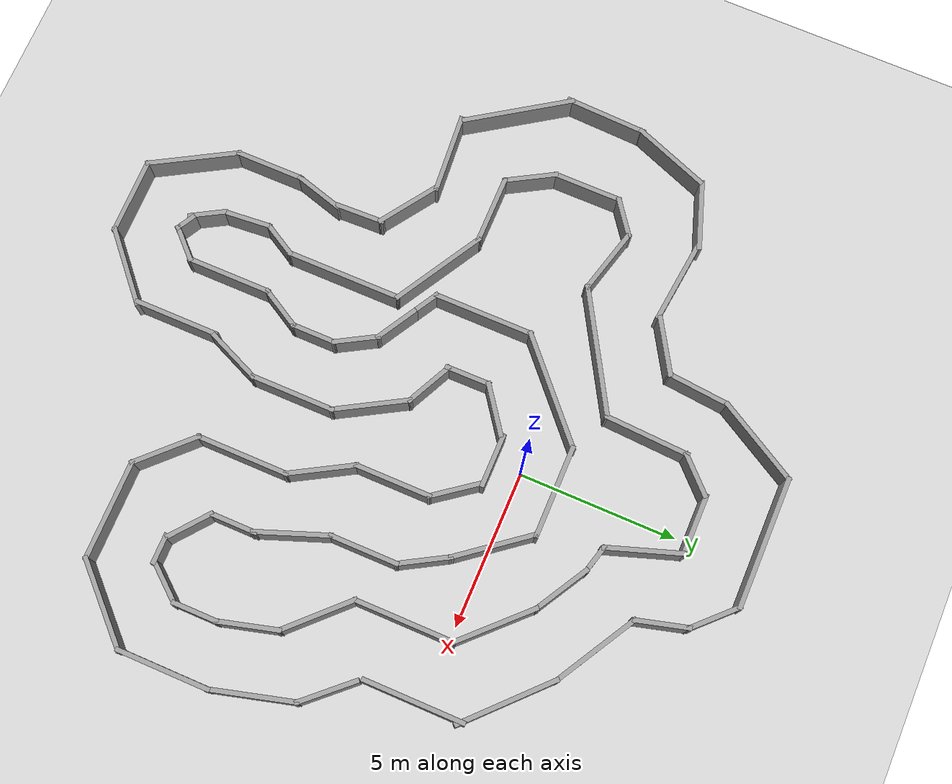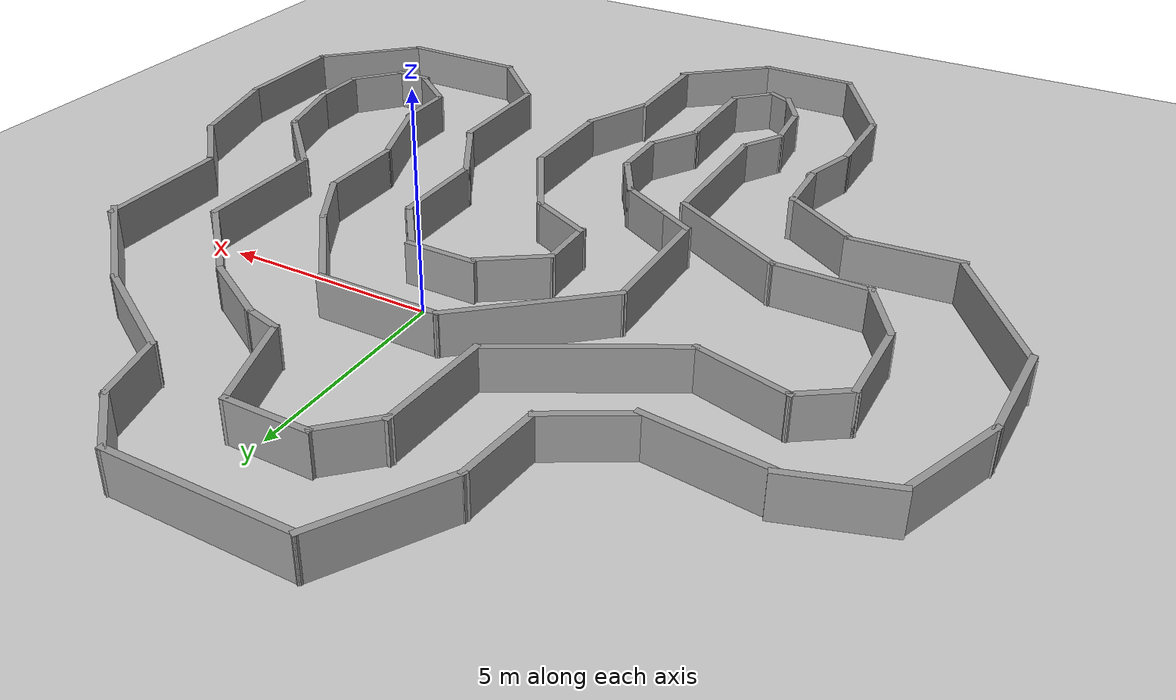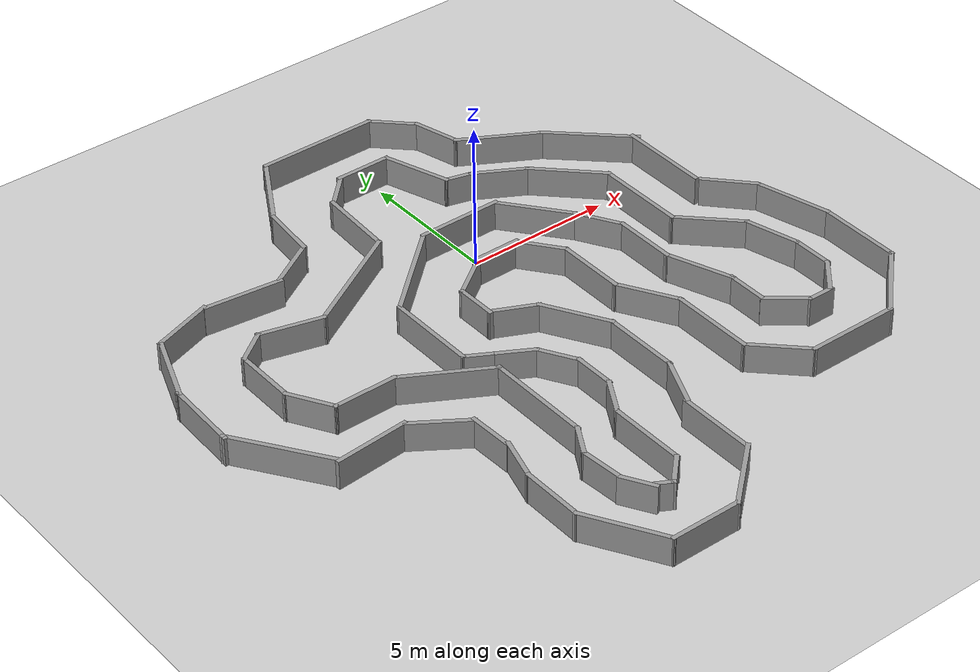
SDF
<sdf version='1.6'>
  <world name='default'>
    <include>
      <uri>model://ground_plane</uri>
    </include>
    <include>
      <uri>model://sun</uri>
    </include>

    <include>
      <uri>model://RaceTrackv2</uri>
      <name>RaceTrackv2</name>
      <pose>-1.0 -3.5 0 0 0 0</pose>
    </include>

  </world>
</sdf>

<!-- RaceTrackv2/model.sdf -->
<sdf version='1.7'>
  <model name='RaceTrackv2'>
    <pose>1.71889 -2.69985 0 0 -0 0</pose>
    <link name='Wall_10'>
      <collision name='Wall_10_Collision'>
        <geometry>
          <box>
            <size>2.5 0.15 1</size>
          </box>
        </geometry>
        <pose>0 0 0.5 0 -0 0</pose>
      </collision>
      <visual name='Wall_10_Visual'>
        <pose>0 0 0.5 0 -0 0</pose>
        <geometry>
          <box>
            <size>2.5 0.15 1</size>
          </box>
        </geometry>
        <material>
          <script>
            <uri>file://media/materials/scripts/gazebo.material</uri>
            <name>Gazebo/Grey</name>
          </script>
          <ambient>1 1 1 1</ambient>
        </material>
        <meta>
          <layer>0</layer>
        </meta>
      </visual>
      <pose>-2.18521 -10.8789 0 0 -0 0</pose>
    </link>
    <link name='Wall_11'>
      <collision name='Wall_11_Collision'>
        <geometry>
          <box>
            <size>2.66002 0.15 1</size>
          </box>
        </geometry>
        <pose>0 0 0.5 0 -0 0</pose>
      </collision>
      <visual name='Wall_11_Visual'>
        <pose>0 0 0.5 0 -0 0</pose>
        <geometry>
          <box>
            <size>2.66002 0.15 1</size>
          </box>
        </geometry>
        <material>
          <script>
            <uri>file://media/materials/scripts/gazebo.material</uri>
            <name>Gazebo/Grey</name>
          </script>
          <ambient>1 1 1 1</ambient>
        </material>
        <meta>
          <layer>0</layer>
        </meta>
      </visual>
      <pose>-0.069604 -10.0481 0 0 -0 0.723519</pose>
    </link>
    <link name='Wall_12'>
      <collision name='Wall_12_Collision'>
        <geometry>
          <box>
            <size>2.75 0.15 1</size>
          </box>
        </geometry>
        <pose>0 0 0.5 0 -0 0</pose>
      </collision>
      <visual name='Wall_12_Visual'>
        <pose>0 0 0.5 0 -0 0</pose>
        <geometry>
          <box>
            <size>2.75 0.15 1</size>
          </box>
        </geometry>
        <material>
          <script>
            <uri>file://media/materials/scripts/gazebo.material</uri>
            <name>Gazebo/Grey</name>
          </script>
          <ambient>1 1 1 1</ambient>
        </material>
        <meta>
          <layer>0</layer>
        </meta>
      </visual>
      <pose>0.816125 -7.91721 0 0 -0 1.5708</pose>
    </link>
    <link name='Wall_13'>
      <collision name='Wall_13_Collision'>
        <geometry>
          <box>
            <size>1.9006 0.15 1</size>
          </box>
        </geometry>
        <pose>0 0 0.5 0 -0 0</pose>
      </collision>
      <visual name='Wall_13_Visual'>
        <pose>0 0 0.5 0 -0 0</pose>
        <geometry>
          <box>
            <size>1.9006 0.15 1</size>
          </box>
        </geometry>
        <material>
          <script>
            <uri>file://media/materials/scripts/gazebo.material</uri>
            <name>Gazebo/Grey</name>
          </script>
          <ambient>1 1 1 1</ambient>
        </material>
        <meta>
          <layer>0</layer>
        </meta>
      </visual>
      <pose>1.22375 -5.81614 0 0 -0 1.15601</pose>
    </link>
    <link name='Wall_14'>
      <collision name='Wall_14_Collision'>
        <geometry>
          <box>
            <size>2.75 0.15 1</size>
          </box>
        </geometry>
        <pose>0 0 0.5 0 -0 0</pose>
      </collision>
      <visual name='Wall_14_Visual'>
        <pose>0 0 0.5 0 -0 0</pose>
        <geometry>
          <box>
            <size>2.75 0.15 1</size>
          </box>
        </geometry>
        <material>
          <script>
            <uri>file://media/materials/scripts/gazebo.material</uri>
            <name>Gazebo/Grey</name>
          </script>
          <ambient>1 1 1 1</ambient>
        </material>
        <meta>
          <layer>0</layer>
        </meta>
      </visual>
      <pose>1.57649 -3.71506 0 0 -0 1.5708</pose>
    </link>
    <link name='Wall_15'>
      <collision name='Wall_15_Collision'>
        <geometry>
          <box>
            <size>2.5 0.15 1</size>
          </box>
        </geometry>
        <pose>0 0 0.5 0 -0 0</pose>
      </collision>
      <visual name='Wall_15_Visual'>
        <pose>0 0 0.5 0 -0 0</pose>
        <geometry>
          <box>
            <size>2.5 0.15 1</size>
          </box>
        </geometry>
        <material>
          <script>
            <uri>file://media/materials/scripts/gazebo.material</uri>
            <name>Gazebo/Grey</name>
          </script>
          <ambient>1 1 1 1</ambient>
        </material>
        <meta>
          <layer>0</layer>
        </meta>
      </visual>
      <pose>0.98899 -1.39748 0 0 -0 2.0944</pose>
    </link>
    <link name='Wall_16'>
      <collision name='Wall_16_Collision'>
        <geometry>
          <box>
            <size>1.69153 0.15 1</size>
          </box>
        </geometry>
        <pose>0 0 0.5 0 -0 0</pose>
      </collision>
      <visual name='Wall_16_Visual'>
        <pose>0 0 0.5 0 -0 0</pose>
        <geometry>
          <box>
            <size>1.69153 0.15 1</size>
          </box>
        </geometry>
        <material>
          <script>
            <uri>file://media/materials/scripts/gazebo.material</uri>
            <name>Gazebo/Grey</name>
          </script>
          <ambient>1 1 1 1</ambient>
        </material>
        <meta>
          <layer>0</layer>
        </meta>
      </visual>
      <pose>-0.291331 -0.042146 0 0 -0 2.68799</pose>
    </link>
    <link name='Wall_17'>
      <collision name='Wall_17_Collision'>
        <geometry>
          <box>
            <size>1.4935 0.15 1</size>
          </box>
        </geometry>
        <pose>0 0 0.5 0 -0 0</pose>
      </collision>
      <visual name='Wall_17_Visual'>
        <pose>0 0 0.5 0 -0 0</pose>
        <geometry>
          <box>
            <size>1.4935 0.15 1</size>
          </box>
        </geometry>
        <material>
          <script>
            <uri>file://media/materials/scripts/gazebo.material</uri>
            <name>Gazebo/Grey</name>
          </script>
          <ambient>1 1 1 1</ambient>
        </material>
        <meta>
          <layer>0</layer>
        </meta>
      </visual>
      <pose>-0.988225 0.925853 0 0 -0 1.57686</pose>
    </link>
    <link name='Wall_18'>
      <collision name='Wall_18_Collision'>
        <geometry>
          <box>
            <size>1.75776 0.15 1</size>
          </box>
        </geometry>
        <pose>0 0 0.5 0 -0 0</pose>
      </collision>
      <visual name='Wall_18_Visual'>
        <pose>0 0 0.5 0 -0 0</pose>
        <geometry>
          <box>
            <size>1.75776 0.15 1</size>
          </box>
        </geometry>
        <material>
          <script>
            <uri>file://media/materials/scripts/gazebo.material</uri>
            <name>Gazebo/Grey</name>
          </script>
          <ambient>1 1 1 1</ambient>
        </material>
        <meta>
          <layer>0</layer>
        </meta>
      </visual>
      <pose>-0.338225 2.06493 0 0 -0 0.620398</pose>
    </link>
    <link name='Wall_19'>
      <collision name='Wall_19_Collision'>
        <geometry>
          <box>
            <size>1.75 0.15 1</size>
          </box>
        </geometry>
        <pose>0 0 0.5 0 -0 0</pose>
      </collision>
      <visual name='Wall_19_Visual'>
        <pose>0 0 0.5 0 -0 0</pose>
        <geometry>
          <box>
            <size>1.75 0.15 1</size>
          </box>
        </geometry>
        <material>
          <script>
            <uri>file://media/materials/scripts/gazebo.material</uri>
            <name>Gazebo/Grey</name>
          </script>
          <ambient>1 1 1 1</ambient>
        </material>
        <meta>
          <layer>0</layer>
        </meta>
      </visual>
      <pose>1.11585 2.61527 0 0 -0 0</pose>
    </link>
    <link name='Wall_2'>
      <collision name='Wall_2_Collision'>
        <geometry>
          <box>
            <size>2.66777 0.15 1</size>
          </box>
        </geometry>
        <pose>0 0 0.5 0 -0 0</pose>
      </collision>
      <visual name='Wall_2_Visual'>
        <pose>0 0 0.5 0 -0 0</pose>
        <geometry>
          <box>
            <size>2.66777 0.15 1</size>
          </box>
        </geometry>
        <material>
          <script>
            <uri>file://media/materials/scripts/gazebo.material</uri>
            <name>Gazebo/Grey</name>
          </script>
          <ambient>1 1 1 1</ambient>
        </material>
        <meta>
          <layer>0</layer>
        </meta>
      </visual>
      <pose>-10.4453 1.6494 0 0 -0 -1.60871</pose>
    </link>
    <link name='Wall_20'>
      <collision name='Wall_20_Collision'>
        <geometry>
          <box>
            <size>1.68795 0.15 1</size>
          </box>
        </geometry>
        <pose>0 0 0.5 0 -0 0</pose>
      </collision>
      <visual name='Wall_20_Visual'>
        <pose>0 0 0.5 0 -0 0</pose>
        <geometry>
          <box>
            <size>1.68795 0.15 1</size>
          </box>
        </geometry>
        <material>
          <script>
            <uri>file://media/materials/scripts/gazebo.material</uri>
            <name>Gazebo/Grey</name>
          </script>
          <ambient>1 1 1 1</ambient>
        </material>
        <meta>
          <layer>0</layer>
        </meta>
      </visual>
      <pose>2.37835 1.91793 0 0 -0 -0.925481</pose>
    </link>
    <link name='Wall_21'>
      <collision name='Wall_21_Collision'>
        <geometry>
          <box>
            <size>2.5 0.15 1</size>
          </box>
        </geometry>
        <pose>0 0 0.5 0 -0 0</pose>
      </collision>
      <visual name='Wall_21_Visual'>
        <pose>0 0 0.5 0 -0 0</pose>
        <geometry>
          <box>
            <size>2.5 0.15 1</size>
          </box>
        </geometry>
        <material>
          <script>
            <uri>file://media/materials/scripts/gazebo.material</uri>
            <name>Gazebo/Grey</name>
          </script>
          <ambient>1 1 1 1</ambient>
        </material>
        <meta>
          <layer>0</layer>
        </meta>
      </visual>
      <pose>2.84085 0.128592 0 0 -0 -1.5708</pose>
    </link>
    <link name='Wall_22'>
      <collision name='Wall_22_Collision'>
        <geometry>
          <box>
            <size>2.25 0.15 1</size>
          </box>
        </geometry>
        <pose>0 0 0.5 0 -0 0</pose>
      </collision>
      <visual name='Wall_22_Visual'>
        <pose>0 0 0.5 0 -0 0</pose>
        <geometry>
          <box>
            <size>2.25 0.15 1</size>
          </box>
        </geometry>
        <material>
          <script>
            <uri>file://media/materials/scripts/gazebo.material</uri>
            <name>Gazebo/Grey</name>
          </script>
          <ambient>1 1 1 1</ambient>
        </material>
        <meta>
          <layer>0</layer>
        </meta>
      </visual>
      <pose>3.36585 -1.95574 0 0 -0 -1.0472</pose>
    </link>
    <link name='Wall_23'>
      <collision name='Wall_23_Collision'>
        <geometry>
          <box>
            <size>3 0.15 1</size>
          </box>
        </geometry>
        <pose>0 0 0.5 0 -0 0</pose>
      </collision>
      <visual name='Wall_23_Visual'>
        <pose>0 0 0.5 0 -0 0</pose>
        <geometry>
          <box>
            <size>3 0.15 1</size>
          </box>
        </geometry>
        <material>
          <script>
            <uri>file://media/materials/scripts/gazebo.material</uri>
            <name>Gazebo/Grey</name>
          </script>
          <ambient>1 1 1 1</ambient>
        </material>
        <meta>
          <layer>0</layer>
        </meta>
      </visual>
      <pose>3.89085 -4.29006 0 0 -0 -1.5708</pose>
    </link>
    <link name='Wall_24'>
      <collision name='Wall_24_Collision'>
        <geometry>
          <box>
            <size>2.25 0.15 1</size>
          </box>
        </geometry>
        <pose>0 0 0.5 0 -0 0</pose>
      </collision>
      <visual name='Wall_24_Visual'>
        <pose>0 0 0.5 0 -0 0</pose>
        <geometry>
          <box>
            <size>2.25 0.15 1</size>
          </box>
        </geometry>
        <material>
          <script>
            <uri>file://media/materials/scripts/gazebo.material</uri>
            <name>Gazebo/Grey</name>
          </script>
          <ambient>1 1 1 1</ambient>
        </material>
        <meta>
          <layer>0</layer>
        </meta>
      </visual>
      <pose>4.63331 -6.45752 0 0 -0 -0.785398</pose>
    </link>
    <link name='Wall_25'>
      <collision name='Wall_25_Collision'>
        <geometry>
          <box>
            <size>3.25 0.15 1</size>
          </box>
        </geometry>
        <pose>0 0 0.5 0 -0 0</pose>
      </collision>
      <visual name='Wall_25_Visual'>
        <pose>0 0 0.5 0 -0 0</pose>
        <geometry>
          <box>
            <size>3.25 0.15 1</size>
          </box>
        </geometry>
        <material>
          <script>
            <uri>file://media/materials/scripts/gazebo.material</uri>
            <name>Gazebo/Grey</name>
          </script>
          <ambient>1 1 1 1</ambient>
        </material>
        <meta>
          <layer>0</layer>
        </meta>
      </visual>
      <pose>6.92577 -7.19999 0 0 -0 0</pose>
    </link>
    <link name='Wall_26'>
      <collision name='Wall_26_Collision'>
        <geometry>
          <box>
            <size>3 0.15 1</size>
          </box>
        </geometry>
        <pose>0 0 0.5 0 -0 0</pose>
      </collision>
      <visual name='Wall_26_Visual'>
        <pose>0 0 0.5 0 -0 0</pose>
        <geometry>
          <box>
            <size>3 0.15 1</size>
          </box>
        </geometry>
        <material>
          <script>
            <uri>file://media/materials/scripts/gazebo.material</uri>
            <name>Gazebo/Grey</name>
          </script>
          <ambient>1 1 1 1</ambient>
        </material>
        <meta>
          <layer>0</layer>
        </meta>
      </visual>
      <pose>9.4834 -6.19236 0 0 -0 0.785398</pose>
    </link>
    <link name='Wall_27'>
      <collision name='Wall_27_Collision'>
        <geometry>
          <box>
            <size>3 0.15 1</size>
          </box>
        </geometry>
        <pose>0 0 0.5 0 -0 0</pose>
      </collision>
      <visual name='Wall_27_Visual'>
        <pose>0 0 0.5 0 -0 0</pose>
        <geometry>
          <box>
            <size>3 0.15 1</size>
          </box>
        </geometry>
        <material>
          <script>
            <uri>file://media/materials/scripts/gazebo.material</uri>
            <name>Gazebo/Grey</name>
          </script>
          <ambient>1 1 1 1</ambient>
        </material>
        <meta>
          <layer>0</layer>
        </meta>
      </visual>
      <pose>10.491 -3.75973 0 0 -0 1.5708</pose>
    </link>
    <link name='Wall_28'>
      <collision name='Wall_28_Collision'>
        <geometry>
          <box>
            <size>2.75 0.15 1</size>
          </box>
        </geometry>
        <pose>0 0 0.5 0 -0 0</pose>
      </collision>
      <visual name='Wall_28_Visual'>
        <pose>0 0 0.5 0 -0 0</pose>
        <geometry>
          <box>
            <size>2.75 0.15 1</size>
          </box>
        </geometry>
        <material>
          <script>
            <uri>file://media/materials/scripts/gazebo.material</uri>
            <name>Gazebo/Grey</name>
          </script>
          <ambient>1 1 1 1</ambient>
        </material>
        <meta>
          <layer>0</layer>
        </meta>
      </visual>
      <pose>10.1546 -1.07903 0 0 -0 1.8326</pose>
    </link>
    <link name='Wall_29'>
      <collision name='Wall_29_Collision'>
        <geometry>
          <box>
            <size>1.9584 0.15 1</size>
          </box>
        </geometry>
        <pose>0 0 0.5 0 -0 0</pose>
      </collision>
      <visual name='Wall_29_Visual'>
        <pose>0 0 0.5 0 -0 0</pose>
        <geometry>
          <box>
            <size>1.9584 0.15 1</size>
          </box>
        </geometry>
        <material>
          <script>
            <uri>file://media/materials/scripts/gazebo.material</uri>
            <name>Gazebo/Grey</name>
          </script>
          <ambient>1 1 1 1</ambient>
        </material>
        <meta>
          <layer>0</layer>
        </meta>
      </visual>
      <pose>9.20676 0.842891 0 0 -0 2.31326</pose>
    </link>
    <link name='Wall_3'>
      <collision name='Wall_3_Collision'>
        <geometry>
          <box>
            <size>3.61418 0.15 1</size>
          </box>
        </geometry>
        <pose>0 0 0.5 0 -0 0</pose>
      </collision>
      <visual name='Wall_3_Visual'>
        <pose>0 0 0.5 0 -0 0</pose>
        <geometry>
          <box>
            <size>3.61418 0.15 1</size>
          </box>
        </geometry>
        <material>
          <script>
            <uri>file://media/materials/scripts/gazebo.material</uri>
            <name>Gazebo/Grey</name>
          </script>
          <ambient>1 1 1 1</ambient>
        </material>
        <meta>
          <layer>0</layer>
        </meta>
      </visual>
      <pose>-9.52713 -0.950918 0 0 -0 -0.979258</pose>
    </link>
    <link name='Wall_30'>
      <collision name='Wall_30_Collision'>
        <geometry>
          <box>
            <size>3.25 0.15 1</size>
          </box>
        </geometry>
        <pose>0 0 0.5 0 -0 0</pose>
      </collision>
      <visual name='Wall_30_Visual'>
        <pose>0 0 0.5 0 -0 0</pose>
        <geometry>
          <box>
            <size>3.25 0.15 1</size>
          </box>
        </geometry>
        <material>
          <script>
            <uri>file://media/materials/scripts/gazebo.material</uri>
            <name>Gazebo/Grey</name>
          </script>
          <ambient>1 1 1 1</ambient>
        </material>
        <meta>
          <layer>0</layer>
        </meta>
      </visual>
      <pose>8.48567 3.22374 0 0 -0 1.5708</pose>
    </link>
    <link name='Wall_31'>
      <collision name='Wall_31_Collision'>
        <geometry>
          <box>
            <size>3.29423 0.15 1</size>
          </box>
        </geometry>
        <pose>0 0 0.5 0 -0 0</pose>
      </collision>
      <visual name='Wall_31_Visual'>
        <pose>0 0 0.5 0 -0 0</pose>
        <geometry>
          <box>
            <size>3.29423 0.15 1</size>
          </box>
        </geometry>
        <material>
          <script>
            <uri>file://media/materials/scripts/gazebo.material</uri>
            <name>Gazebo/Grey</name>
          </script>
          <ambient>1 1 1 1</ambient>
        </material>
        <meta>
          <layer>0</layer>
        </meta>
      </visual>
      <pose>7.45667 5.69298 0 0 -0 2.38088</pose>
    </link>
    <link name='Wall_32'>
      <collision name='Wall_32_Collision'>
        <geometry>
          <box>
            <size>3 0.15 1</size>
          </box>
        </geometry>
        <pose>0 0 0.5 0 -0 0</pose>
      </collision>
      <visual name='Wall_32_Visual'>
        <pose>0 0 0.5 0 -0 0</pose>
        <geometry>
          <box>
            <size>3 0.15 1</size>
          </box>
        </geometry>
        <material>
          <script>
            <uri>file://media/materials/scripts/gazebo.material</uri>
            <name>Gazebo/Grey</name>
          </script>
          <ambient>1 1 1 1</ambient>
        </material>
        <meta>
          <layer>0</layer>
        </meta>
      </visual>
      <pose>5.08383 7.48935 0 0 -0 2.61799</pose>
    </link>
    <link name='Wall_33'>
      <collision name='Wall_33_Collision'>
        <geometry>
          <box>
            <size>1.75 0.15 1</size>
          </box>
        </geometry>
        <pose>0 0 0.5 0 -0 0</pose>
      </collision>
      <visual name='Wall_33_Visual'>
        <pose>0 0 0.5 0 -0 0</pose>
        <geometry>
          <box>
            <size>1.75 0.15 1</size>
          </box>
        </geometry>
        <material>
          <script>
            <uri>file://media/materials/scripts/gazebo.material</uri>
            <name>Gazebo/Grey</name>
          </script>
          <ambient>1 1 1 1</ambient>
        </material>
        <meta>
          <layer>0</layer>
        </meta>
      </visual>
      <pose>3.64269 8.9746 0 0 -0 1.8326</pose>
    </link>
    <link name='Wall_34'>
      <collision name='Wall_34_Collision'>
        <geometry>
          <box>
            <size>1.75 0.15 1</size>
          </box>
        </geometry>
        <pose>0 0 0.5 0 -0 0</pose>
      </collision>
      <visual name='Wall_34_Visual'>
        <pose>0 0 0.5 0 -0 0</pose>
        <geometry>
          <box>
            <size>1.75 0.15 1</size>
          </box>
        </geometry>
        <material>
          <script>
            <uri>file://media/materials/scripts/gazebo.material</uri>
            <name>Gazebo/Grey</name>
          </script>
          <ambient>1 1 1 1</ambient>
        </material>
        <meta>
          <layer>0</layer>
        </meta>
      </visual>
      <pose>2.86995 10.313 0 0 -0 2.35619</pose>
    </link>
    <link name='Wall_35'>
      <collision name='Wall_35_Collision'>
        <geometry>
          <box>
            <size>4.25 0.15 1</size>
          </box>
        </geometry>
        <pose>0 0 0.5 0 -0 0</pose>
      </collision>
      <visual name='Wall_35_Visual'>
        <pose>0 0 0.5 0 -0 0</pose>
        <geometry>
          <box>
            <size>4.25 0.15 1</size>
          </box>
        </geometry>
        <material>
          <script>
            <uri>file://media/materials/scripts/gazebo.material</uri>
            <name>Gazebo/Grey</name>
          </script>
          <ambient>1 1 1 1</ambient>
        </material>
        <meta>
          <layer>0</layer>
        </meta>
      </visual>
      <pose>0.254266 10.8787 0 0 -0 3.14159</pose>
    </link>
    <link name='Wall_36'>
      <collision name='Wall_36_Collision'>
        <geometry>
          <box>
            <size>3 0.15 1</size>
          </box>
        </geometry>
        <pose>0 0 0.5 0 -0 0</pose>
      </collision>
      <visual name='Wall_36_Visual'>
        <pose>0 0 0.5 0 -0 0</pose>
        <geometry>
          <box>
            <size>3 0.15 1</size>
          </box>
        </geometry>
        <material>
          <script>
            <uri>file://media/materials/scripts/gazebo.material</uri>
            <name>Gazebo/Grey</name>
          </script>
          <ambient>1 1 1 1</ambient>
        </material>
        <meta>
          <layer>0</layer>
        </meta>
      </visual>
      <pose>-2.50823 9.64462 0 0 -0 -2.0944</pose>
    </link>
    <link name='Wall_37'>
      <collision name='Wall_37_Collision'>
        <geometry>
          <box>
            <size>2.06277 0.15 1</size>
          </box>
        </geometry>
        <pose>0 0 0.5 0 -0 0</pose>
      </collision>
      <visual name='Wall_37_Visual'>
        <pose>0 0 0.5 0 -0 0</pose>
        <geometry>
          <box>
            <size>2.06277 0.15 1</size>
          </box>
        </geometry>
        <material>
          <script>
            <uri>file://media/materials/scripts/gazebo.material</uri>
            <name>Gazebo/Grey</name>
          </script>
          <ambient>1 1 1 1</ambient>
        </material>
        <meta>
          <layer>0</layer>
        </meta>
      </visual>
      <pose>-3.31331 7.45869 0 0 -0 -1.66775</pose>
    </link>
    <link name='Wall_38'>
      <collision name='Wall_38_Collision'>
        <geometry>
          <box>
            <size>1.95256 0.15 1</size>
          </box>
        </geometry>
        <pose>0 0 0.5 0 -0 0</pose>
      </collision>
      <visual name='Wall_38_Visual'>
        <pose>0 0 0.5 0 -0 0</pose>
        <geometry>
          <box>
            <size>1.95256 0.15 1</size>
          </box>
        </geometry>
        <material>
          <script>
            <uri>file://media/materials/scripts/gazebo.material</uri>
            <name>Gazebo/Grey</name>
          </script>
          <ambient>1 1 1 1</ambient>
        </material>
        <meta>
          <layer>0</layer>
        </meta>
      </visual>
      <pose>-4.17945 6.04435 0 0 -0 -2.60273</pose>
    </link>
    <link name='Wall_39'>
      <collision name='Wall_39_Collision'>
        <geometry>
          <box>
            <size>2.73435 0.15 1</size>
          </box>
        </geometry>
        <pose>0 0 0.5 0 -0 0</pose>
      </collision>
      <visual name='Wall_39_Visual'>
        <pose>0 0 0.5 0 -0 0</pose>
        <geometry>
          <box>
            <size>2.73435 0.15 1</size>
          </box>
        </geometry>
        <material>
          <script>
            <uri>file://media/materials/scripts/gazebo.material</uri>
            <name>Gazebo/Grey</name>
          </script>
          <ambient>1 1 1 1</ambient>
        </material>
        <meta>
          <layer>0</layer>
        </meta>
      </visual>
      <pose>-6.23695 5.67263 0 0 -0 3.02863</pose>
    </link>
    <link name='Wall_4'>
      <collision name='Wall_4_Collision'>
        <geometry>
          <box>
            <size>2.60288 0.15 1</size>
          </box>
        </geometry>
        <pose>0 0 0.5 0 -0 0</pose>
      </collision>
      <visual name='Wall_4_Visual'>
        <pose>0 0 0.5 0 -0 0</pose>
        <geometry>
          <box>
            <size>2.60288 0.15 1</size>
          </box>
        </geometry>
        <material>
          <script>
            <uri>file://media/materials/scripts/gazebo.material</uri>
            <name>Gazebo/Grey</name>
          </script>
          <ambient>1 1 1 1</ambient>
        </material>
        <meta>
          <layer>0</layer>
        </meta>
      </visual>
      <pose>-7.33853 -2.3887 0 0 -0 0.077898</pose>
    </link>
    <link name='Wall_40'>
      <collision name='Wall_40_Collision'>
        <geometry>
          <box>
            <size>2.25894 0.15 1</size>
          </box>
        </geometry>
        <pose>0 0 0.5 0 -0 0</pose>
      </collision>
      <visual name='Wall_40_Visual'>
        <pose>0 0 0.5 0 -0 0</pose>
        <geometry>
          <box>
            <size>2.25894 0.15 1</size>
          </box>
        </geometry>
        <material>
          <script>
            <uri>file://media/materials/scripts/gazebo.material</uri>
            <name>Gazebo/Grey</name>
          </script>
          <ambient>1 1 1 1</ambient>
        </material>
        <meta>
          <layer>0</layer>
        </meta>
      </visual>
      <pose>-8.52105 5.53913 0 0 -0 -2.81925</pose>
    </link>
    <link name='Wall_41'>
      <collision name='Wall_41_Collision'>
        <geometry>
          <box>
            <size>2.60916 0.15 1</size>
          </box>
        </geometry>
        <pose>0 0 0.5 0 -0 0</pose>
      </collision>
      <visual name='Wall_41_Visual'>
        <pose>0 0 0.5 0 -0 0</pose>
        <geometry>
          <box>
            <size>2.60916 0.15 1</size>
          </box>
        </geometry>
        <material>
          <script>
            <uri>file://media/materials/scripts/gazebo.material</uri>
            <name>Gazebo/Grey</name>
          </script>
          <ambient>1 1 1 1</ambient>
        </material>
        <meta>
          <layer>0</layer>
        </meta>
      </visual>
      <pose>-9.95939 4.00851 0 0 -0 -1.93517</pose>
    </link>
    <link name='Wall_42'>
      <collision name='Wall_42_Collision'>
        <geometry>
          <box>
            <size>0.15 0.15 1</size>
          </box>
        </geometry>
        <pose>0 0 0.5 0 -0 0</pose>
      </collision>
      <visual name='Wall_42_Visual'>
        <pose>0 0 0.5 0 -0 0</pose>
        <geometry>
          <box>
            <size>0.15 0.15 1</size>
          </box>
        </geometry>
        <material>
          <script>
            <uri>file://media/materials/scripts/gazebo.material</uri>
            <name>Gazebo/Grey</name>
          </script>
          <ambient>1 1 1 1</ambient>
        </material>
        <meta>
          <layer>0</layer>
        </meta>
      </visual>
      <pose>-10.3976 2.90738 0 0 -0 0</pose>
    </link>
    <link name='Wall_44'>
      <collision name='Wall_44_Collision'>
        <geometry>
          <box>
            <size>2.25 0.15 1</size>
          </box>
        </geometry>
        <pose>0 0 0.5 0 -0 0</pose>
      </collision>
      <visual name='Wall_44_Visual'>
        <pose>0 0 0.5 0 -0 0</pose>
        <geometry>
          <box>
            <size>2.25 0.15 1</size>
          </box>
        </geometry>
        <material>
          <script>
            <uri>file://media/materials/scripts/gazebo.material</uri>
            <name>Gazebo/Grey</name>
          </script>
          <ambient>1 1 1 1</ambient>
        </material>
        <meta>
          <layer>0</layer>
        </meta>
      </visual>
      <pose>-8.0003 1.987 0 0 -0 -1.5708</pose>
    </link>
    <link name='Wall_45'>
      <collision name='Wall_45_Collision'>
        <geometry>
          <box>
            <size>1.75 0.15 1</size>
          </box>
        </geometry>
        <pose>0 0 0.5 0 -0 0</pose>
      </collision>
      <visual name='Wall_45_Visual'>
        <pose>0 0 0.5 0 -0 0</pose>
        <geometry>
          <box>
            <size>1.75 0.15 1</size>
          </box>
        </geometry>
        <material>
          <script>
            <uri>file://media/materials/scripts/gazebo.material</uri>
            <name>Gazebo/Grey</name>
          </script>
          <ambient>1 1 1 1</ambient>
        </material>
        <meta>
          <layer>0</layer>
        </meta>
      </visual>
      <pose>-7.6003 0.244181 0 0 -0 -1.0472</pose>
    </link>
    <link name='Wall_46'>
      <collision name='Wall_46_Collision'>
        <geometry>
          <box>
            <size>2.25 0.15 1</size>
          </box>
        </geometry>
        <pose>0 0 0.5 0 -0 0</pose>
      </collision>
      <visual name='Wall_46_Visual'>
        <pose>0 0 0.5 0 -0 0</pose>
        <geometry>
          <box>
            <size>2.25 0.15 1</size>
          </box>
        </geometry>
        <material>
          <script>
            <uri>file://media/materials/scripts/gazebo.material</uri>
            <name>Gazebo/Grey</name>
          </script>
          <ambient>1 1 1 1</ambient>
        </material>
        <meta>
          <layer>0</layer>
        </meta>
      </visual>
      <pose>-6.1503 -0.448639 0 0 -0 0</pose>
    </link>
    <link name='Wall_47'>
      <collision name='Wall_47_Collision'>
        <geometry>
          <box>
            <size>3.25 0.15 1</size>
          </box>
        </geometry>
        <pose>0 0 0.5 0 -0 0</pose>
      </collision>
      <visual name='Wall_47_Visual'>
        <pose>0 0 0.5 0 -0 0</pose>
        <geometry>
          <box>
            <size>3.25 0.15 1</size>
          </box>
        </geometry>
        <material>
          <script>
            <uri>file://media/materials/scripts/gazebo.material</uri>
            <name>Gazebo/Grey</name>
          </script>
          <ambient>1 1 1 1</ambient>
        </material>
        <meta>
          <layer>0</layer>
        </meta>
      </visual>
      <pose>-3.75796 -1.22364 0 0 -0 -0.523599</pose>
    </link>
    <link name='Wall_48'>
      <collision name='Wall_48_Collision'>
        <geometry>
          <box>
            <size>3.75 0.15 1</size>
          </box>
        </geometry>
        <pose>0 0 0.5 0 -0 0</pose>
      </collision>
      <visual name='Wall_48_Visual'>
        <pose>0 0 0.5 0 -0 0</pose>
        <geometry>
          <box>
            <size>3.75 0.15 1</size>
          </box>
        </geometry>
        <material>
          <script>
            <uri>file://media/materials/scripts/gazebo.material</uri>
            <name>Gazebo/Grey</name>
          </script>
          <ambient>1 1 1 1</ambient>
        </material>
        <meta>
          <layer>0</layer>
        </meta>
      </visual>
      <pose>-2.41562 -3.79864 0 0 -0 -1.5708</pose>
    </link>
    <link name='Wall_49'>
      <collision name='Wall_49_Collision'>
        <geometry>
          <box>
            <size>1.25 0.15 1</size>
          </box>
        </geometry>
        <pose>0 0 0.5 0 -0 0</pose>
      </collision>
      <visual name='Wall_49_Visual'>
        <pose>0 0 0.5 0 -0 0</pose>
        <geometry>
          <box>
            <size>1.25 0.15 1</size>
          </box>
        </geometry>
        <material>
          <script>
            <uri>file://media/materials/scripts/gazebo.material</uri>
            <name>Gazebo/Grey</name>
          </script>
          <ambient>1 1 1 1</ambient>
        </material>
        <meta>
          <layer>0</layer>
        </meta>
      </visual>
      <pose>-2.69062 -6.07495 0 0 -0 -2.0944</pose>
    </link>
    <link name='Wall_5'>
      <collision name='Wall_5_Collision'>
        <geometry>
          <box>
            <size>2.15112 0.15 1</size>
          </box>
        </geometry>
        <pose>0 0 0.5 0 -0 0</pose>
      </collision>
      <visual name='Wall_5_Visual'>
        <pose>0 0 0.5 0 -0 0</pose>
        <geometry>
          <box>
            <size>2.15112 0.15 1</size>
          </box>
        </geometry>
        <material>
          <script>
            <uri>file://media/materials/scripts/gazebo.material</uri>
            <name>Gazebo/Grey</name>
          </script>
          <ambient>1 1 1 1</ambient>
        </material>
        <meta>
          <layer>0</layer>
        </meta>
      </visual>
      <pose>-5.28911 -2.90462 0 0 -0 -0.598404</pose>
    </link>
    <link name='Wall_50'>
      <collision name='Wall_50_Collision'>
        <geometry>
          <box>
            <size>1.48014 0.15 1</size>
          </box>
        </geometry>
        <pose>0 0 0.5 0 -0 0</pose>
      </collision>
      <visual name='Wall_50_Visual'>
        <pose>0 0 0.5 0 -0 0</pose>
        <geometry>
          <box>
            <size>1.48014 0.15 1</size>
          </box>
        </geometry>
        <material>
          <script>
            <uri>file://media/materials/scripts/gazebo.material</uri>
            <name>Gazebo/Grey</name>
          </script>
          <ambient>1 1 1 1</ambient>
        </material>
        <meta>
          <layer>0</layer>
        </meta>
      </visual>
      <pose>-2.91074 -7.21407 0 0 -0 -1.48819</pose>
    </link>
    <link name='Wall_51'>
      <collision name='Wall_51_Collision'>
        <geometry>
          <box>
            <size>1.25 0.15 1</size>
          </box>
        </geometry>
        <pose>0 0 0.5 0 -0 0</pose>
      </collision>
      <visual name='Wall_51_Visual'>
        <pose>0 0 0.5 0 -0 0</pose>
        <geometry>
          <box>
            <size>1.25 0.15 1</size>
          </box>
        </geometry>
        <material>
          <script>
            <uri>file://media/materials/scripts/gazebo.material</uri>
            <name>Gazebo/Grey</name>
          </script>
          <ambient>1 1 1 1</ambient>
        </material>
        <meta>
          <layer>0</layer>
        </meta>
      </visual>
      <pose>-2.58086 -8.46295 0 0 -0 -1.0472</pose>
    </link>
    <link name='Wall_52'>
      <collision name='Wall_52_Collision'>
        <geometry>
          <box>
            <size>0.711809 0.15 1</size>
          </box>
        </geometry>
        <pose>0 0 0.5 0 -0 0</pose>
      </collision>
      <visual name='Wall_52_Visual'>
        <pose>0 0 0.5 0 -0 0</pose>
        <geometry>
          <box>
            <size>0.711809 0.15 1</size>
          </box>
        </geometry>
        <material>
          <script>
            <uri>file://media/materials/scripts/gazebo.material</uri>
            <name>Gazebo/Grey</name>
          </script>
          <ambient>1 1 1 1</ambient>
        </material>
        <meta>
          <layer>0</layer>
        </meta>
      </visual>
      <pose>-2.06074 -8.9667 0 0 -0 -0.510264</pose>
    </link>
    <link name='Wall_53'>
      <collision name='Wall_53_Collision'>
        <geometry>
          <box>
            <size>1.25 0.15 1</size>
          </box>
        </geometry>
        <pose>0 0 0.5 0 -0 0</pose>
      </collision>
      <visual name='Wall_53_Visual'>
        <pose>0 0 0.5 0 -0 0</pose>
        <geometry>
          <box>
            <size>1.25 0.15 1</size>
          </box>
        </geometry>
        <material>
          <script>
            <uri>file://media/materials/scripts/gazebo.material</uri>
            <name>Gazebo/Grey</name>
          </script>
          <ambient>1 1 1 1</ambient>
        </material>
        <meta>
          <layer>0</layer>
        </meta>
      </visual>
      <pose>-1.42671 -8.71499 0 0 -0 0.785398</pose>
    </link>
    <link name='Wall_54'>
      <collision name='Wall_54_Collision'>
        <geometry>
          <box>
            <size>2.75 0.15 1</size>
          </box>
        </geometry>
        <pose>0 0 0.5 0 -0 0</pose>
      </collision>
      <visual name='Wall_54_Visual'>
        <pose>0 0 0.5 0 -0 0</pose>
        <geometry>
          <box>
            <size>2.75 0.15 1</size>
          </box>
        </geometry>
        <material>
          <script>
            <uri>file://media/materials/scripts/gazebo.material</uri>
            <name>Gazebo/Grey</name>
          </script>
          <ambient>1 1 1 1</ambient>
        </material>
        <meta>
          <layer>0</layer>
        </meta>
      </visual>
      <pose>-1.0378 -7.02608 0 0 -0 1.5708</pose>
    </link>
    <link name='Wall_55'>
      <collision name='Wall_55_Collision'>
        <geometry>
          <box>
            <size>1.5 0.15 1</size>
          </box>
        </geometry>
        <pose>0 0 0.5 0 -0 0</pose>
      </collision>
      <visual name='Wall_55_Visual'>
        <pose>0 0 0.5 0 -0 0</pose>
        <geometry>
          <box>
            <size>1.5 0.15 1</size>
          </box>
        </geometry>
        <material>
          <script>
            <uri>file://media/materials/scripts/gazebo.material</uri>
            <name>Gazebo/Grey</name>
          </script>
          <ambient>1 1 1 1</ambient>
        </material>
        <meta>
          <layer>0</layer>
        </meta>
      </visual>
      <pose>-0.700301 -5.14151 0 0 -0 1.0472</pose>
    </link>
    <link name='Wall_56'>
      <collision name='Wall_56_Collision'>
        <geometry>
          <box>
            <size>1.5 0.15 1</size>
          </box>
        </geometry>
        <pose>0 0 0.5 0 -0 0</pose>
      </collision>
      <visual name='Wall_56_Visual'>
        <pose>0 0 0.5 0 -0 0</pose>
        <geometry>
          <box>
            <size>1.5 0.15 1</size>
          </box>
        </geometry>
        <material>
          <script>
            <uri>file://media/materials/scripts/gazebo.material</uri>
            <name>Gazebo/Grey</name>
          </script>
          <ambient>1 1 1 1</ambient>
        </material>
        <meta>
          <layer>0</layer>
        </meta>
      </visual>
      <pose>-0.362801 -3.88194 0 0 -0 1.5708</pose>
    </link>
    <link name='Wall_57'>
      <collision name='Wall_57_Collision'>
        <geometry>
          <box>
            <size>1.5 0.15 1</size>
          </box>
        </geometry>
        <pose>0 0 0.5 0 -0 0</pose>
      </collision>
      <visual name='Wall_57_Visual'>
        <pose>0 0 0.5 0 -0 0</pose>
        <geometry>
          <box>
            <size>1.5 0.15 1</size>
          </box>
        </geometry>
        <material>
          <script>
            <uri>file://media/materials/scripts/gazebo.material</uri>
            <name>Gazebo/Grey</name>
          </script>
          <ambient>1 1 1 1</ambient>
        </material>
        <meta>
          <layer>0</layer>
        </meta>
      </visual>
      <pose>-0.700301 -2.62238 0 0 -0 2.0944</pose>
    </link>
    <link name='Wall_58'>
      <collision name='Wall_58_Collision'>
        <geometry>
          <box>
            <size>1.5 0.15 1</size>
          </box>
        </geometry>
        <pose>0 0 0.5 0 -0 0</pose>
      </collision>
      <visual name='Wall_58_Visual'>
        <pose>0 0 0.5 0 -0 0</pose>
        <geometry>
          <box>
            <size>1.5 0.15 1</size>
          </box>
        </geometry>
        <material>
          <script>
            <uri>file://media/materials/scripts/gazebo.material</uri>
            <name>Gazebo/Grey</name>
          </script>
          <ambient>1 1 1 1</ambient>
        </material>
        <meta>
          <layer>0</layer>
        </meta>
      </visual>
      <pose>-1.62237 -1.70031 0 0 -0 2.61799</pose>
    </link>
    <link name='Wall_59'>
      <collision name='Wall_59_Collision'>
        <geometry>
          <box>
            <size>1 0.15 1</size>
          </box>
        </geometry>
        <pose>0 0 0.5 0 -0 0</pose>
      </collision>
      <visual name='Wall_59_Visual'>
        <pose>0 0 0.5 0 -0 0</pose>
        <geometry>
          <box>
            <size>1 0.15 1</size>
          </box>
        </geometry>
        <material>
          <script>
            <uri>file://media/materials/scripts/gazebo.material</uri>
            <name>Gazebo/Grey</name>
          </script>
          <ambient>1 1 1 1</ambient>
        </material>
        <meta>
          <layer>0</layer>
        </meta>
      </visual>
      <pose>-2.575 -1.15031 0 0 -0 2.61799</pose>
    </link>
    <link name='Wall_6'>
      <collision name='Wall_6_Collision'>
        <geometry>
          <box>
            <size>1.60762 0.15 1</size>
          </box>
        </geometry>
        <pose>0 0 0.5 0 -0 0</pose>
      </collision>
      <visual name='Wall_6_Visual'>
        <pose>0 0 0.5 0 -0 0</pose>
        <geometry>
          <box>
            <size>1.60762 0.15 1</size>
          </box>
        </geometry>
        <material>
          <script>
            <uri>file://media/materials/scripts/gazebo.material</uri>
            <name>Gazebo/Grey</name>
          </script>
          <ambient>1 1 1 1</ambient>
        </material>
        <meta>
          <layer>0</layer>
        </meta>
      </visual>
      <pose>-4.43855 -4.14896 0 0 -0 -1.53805</pose>
    </link>
    <link name='Wall_60'>
      <collision name='Wall_60_Collision'>
        <geometry>
          <box>
            <size>3.25 0.15 1</size>
          </box>
        </geometry>
        <pose>0 0 0.5 0 -0 0</pose>
      </collision>
      <visual name='Wall_60_Visual'>
        <pose>0 0 0.5 0 -0 0</pose>
        <geometry>
          <box>
            <size>3.25 0.15 1</size>
          </box>
        </geometry>
        <material>
          <script>
            <uri>file://media/materials/scripts/gazebo.material</uri>
            <name>Gazebo/Grey</name>
          </script>
          <ambient>1 1 1 1</ambient>
        </material>
        <meta>
          <layer>0</layer>
        </meta>
      </visual>
      <pose>-2.94306 0.612191 0 0 -0 1.5708</pose>
    </link>
    <link name='Wall_61'>
      <collision name='Wall_61_Collision'>
        <geometry>
          <box>
            <size>3.88384 0.15 1</size>
          </box>
        </geometry>
        <pose>0 0 0.5 0 -0 0</pose>
      </collision>
      <visual name='Wall_61_Visual'>
        <pose>0 0 0.5 0 -0 0</pose>
        <geometry>
          <box>
            <size>3.88384 0.15 1</size>
          </box>
        </geometry>
        <material>
          <script>
            <uri>file://media/materials/scripts/gazebo.material</uri>
            <name>Gazebo/Grey</name>
          </script>
          <ambient>1 1 1 1</ambient>
        </material>
        <meta>
          <layer>0</layer>
        </meta>
      </visual>
      <pose>-1.55294 3.40838 0 0 -0 0.730857</pose>
    </link>
    <link name='Wall_62'>
      <collision name='Wall_62_Collision'>
        <geometry>
          <box>
            <size>3 0.15 1</size>
          </box>
        </geometry>
        <pose>0 0 0.5 0 -0 0</pose>
      </collision>
      <visual name='Wall_62_Visual'>
        <pose>0 0 0.5 0 -0 0</pose>
        <geometry>
          <box>
            <size>3 0.15 1</size>
          </box>
        </geometry>
        <material>
          <script>
            <uri>file://media/materials/scripts/gazebo.material</uri>
            <name>Gazebo/Grey</name>
          </script>
          <ambient>1 1 1 1</ambient>
        </material>
        <meta>
          <layer>0</layer>
        </meta>
      </visual>
      <pose>1.26217 4.65456 0 0 -0 0</pose>
    </link>
    <link name='Wall_63'>
      <collision name='Wall_63_Collision'>
        <geometry>
          <box>
            <size>2.69778 0.15 1</size>
          </box>
        </geometry>
        <pose>0 0 0.5 0 -0 0</pose>
      </collision>
      <visual name='Wall_63_Visual'>
        <pose>0 0 0.5 0 -0 0</pose>
        <geometry>
          <box>
            <size>2.69778 0.15 1</size>
          </box>
        </geometry>
        <material>
          <script>
            <uri>file://media/materials/scripts/gazebo.material</uri>
            <name>Gazebo/Grey</name>
          </script>
          <ambient>1 1 1 1</ambient>
        </material>
        <meta>
          <layer>0</layer>
        </meta>
      </visual>
      <pose>3.47206 3.59858 0 0 -0 -0.906974</pose>
    </link>
    <link name='Wall_64'>
      <collision name='Wall_64_Collision'>
        <geometry>
          <box>
            <size>1.75 0.15 1</size>
          </box>
        </geometry>
        <pose>0 0 0.5 0 -0 0</pose>
      </collision>
      <visual name='Wall_64_Visual'>
        <pose>0 0 0.5 0 -0 0</pose>
        <geometry>
          <box>
            <size>1.75 0.15 1</size>
          </box>
        </geometry>
        <material>
          <script>
            <uri>file://media/materials/scripts/gazebo.material</uri>
            <name>Gazebo/Grey</name>
          </script>
          <ambient>1 1 1 1</ambient>
        </material>
        <meta>
          <layer>0</layer>
        </meta>
      </visual>
      <pose>4.65694 1.90238 0 0 -0 -1.0472</pose>
    </link>
    <link name='Wall_65'>
      <collision name='Wall_65_Collision'>
        <geometry>
          <box>
            <size>2.25 0.15 1</size>
          </box>
        </geometry>
        <pose>0 0 0.5 0 -0 0</pose>
      </collision>
      <visual name='Wall_65_Visual'>
        <pose>0 0 0.5 0 -0 0</pose>
        <geometry>
          <box>
            <size>2.25 0.15 1</size>
          </box>
        </geometry>
        <material>
          <script>
            <uri>file://media/materials/scripts/gazebo.material</uri>
            <name>Gazebo/Grey</name>
          </script>
          <ambient>1 1 1 1</ambient>
        </material>
        <meta>
          <layer>0</layer>
        </meta>
      </visual>
      <pose>5.05694 0.159563 0 0 -0 -1.5708</pose>
    </link>
    <link name='Wall_66'>
      <collision name='Wall_66_Collision'>
        <geometry>
          <box>
            <size>2.43607 0.15 1</size>
          </box>
        </geometry>
        <pose>0 0 0.5 0 -0 0</pose>
      </collision>
      <visual name='Wall_66_Visual'>
        <pose>0 0 0.5 0 -0 0</pose>
        <geometry>
          <box>
            <size>2.43607 0.15 1</size>
          </box>
        </geometry>
        <material>
          <script>
            <uri>file://media/materials/scripts/gazebo.material</uri>
            <name>Gazebo/Grey</name>
          </script>
          <ambient>1 1 1 1</ambient>
        </material>
        <meta>
          <layer>0</layer>
        </meta>
      </visual>
      <pose>5.45237 -1.9629 0 0 -0 -1.21755</pose>
    </link>
    <link name='Wall_67'>
      <collision name='Wall_67_Collision'>
        <geometry>
          <box>
            <size>1.5 0.15 1</size>
          </box>
        </geometry>
        <pose>0 0 0.5 0 -0 0</pose>
      </collision>
      <visual name='Wall_67_Visual'>
        <pose>0 0 0.5 0 -0 0</pose>
        <geometry>
          <box>
            <size>1.5 0.15 1</size>
          </box>
        </geometry>
        <material>
          <script>
            <uri>file://media/materials/scripts/gazebo.material</uri>
            <name>Gazebo/Grey</name>
          </script>
          <ambient>1 1 1 1</ambient>
        </material>
        <meta>
          <layer>0</layer>
        </meta>
      </visual>
      <pose>5.84779 -3.65548 0 0 -0 -1.5708</pose>
    </link>
    <link name='Wall_68'>
      <collision name='Wall_68_Collision'>
        <geometry>
          <box>
            <size>1.56895 0.15 1</size>
          </box>
        </geometry>
        <pose>0 0 0.5 0 -0 0</pose>
      </collision>
      <visual name='Wall_68_Visual'>
        <pose>0 0 0.5 0 -0 0</pose>
        <geometry>
          <box>
            <size>1.56895 0.15 1</size>
          </box>
        </geometry>
        <material>
          <script>
            <uri>file://media/materials/scripts/gazebo.material</uri>
            <name>Gazebo/Grey</name>
          </script>
          <ambient>1 1 1 1</ambient>
        </material>
        <meta>
          <layer>0</layer>
        </meta>
      </visual>
      <pose>6.40134 -4.82914 0 0 -0 -0.675789</pose>
    </link>
    <link name='Wall_69'>
      <collision name='Wall_69_Collision'>
        <geometry>
          <box>
            <size>1 0.15 1</size>
          </box>
        </geometry>
        <pose>0 0 0.5 0 -0 0</pose>
      </collision>
      <visual name='Wall_69_Visual'>
        <pose>0 0 0.5 0 -0 0</pose>
        <geometry>
          <box>
            <size>1 0.15 1</size>
          </box>
        </geometry>
        <material>
          <script>
            <uri>file://media/materials/scripts/gazebo.material</uri>
            <name>Gazebo/Grey</name>
          </script>
          <ambient>1 1 1 1</ambient>
        </material>
        <meta>
          <layer>0</layer>
        </meta>
      </visual>
      <pose>7.37988 -5.32781 0 0 -0 0</pose>
    </link>
    <link name='Wall_7'>
      <collision name='Wall_7_Collision'>
        <geometry>
          <box>
            <size>1.64313 0.15 1</size>
          </box>
        </geometry>
        <pose>0 0 0.5 0 -0 0</pose>
      </collision>
      <visual name='Wall_7_Visual'>
        <pose>0 0 0.5 0 -0 0</pose>
        <geometry>
          <box>
            <size>1.64313 0.15 1</size>
          </box>
        </geometry>
        <material>
          <script>
            <uri>file://media/materials/scripts/gazebo.material</uri>
            <name>Gazebo/Grey</name>
          </script>
          <ambient>1 1 1 1</ambient>
        </material>
        <meta>
          <layer>0</layer>
        </meta>
      </visual>
      <pose>-4.57609 -5.59406 0 0 -0 -1.8547</pose>
    </link>
    <link name='Wall_70'>
      <collision name='Wall_70_Collision'>
        <geometry>
          <box>
            <size>1.44925 0.15 1</size>
          </box>
        </geometry>
        <pose>0 0 0.5 0 -0 0</pose>
      </collision>
      <visual name='Wall_70_Visual'>
        <pose>0 0 0.5 0 -0 0</pose>
        <geometry>
          <box>
            <size>1.44925 0.15 1</size>
          </box>
        </geometry>
        <material>
          <script>
            <uri>file://media/materials/scripts/gazebo.material</uri>
            <name>Gazebo/Grey</name>
          </script>
          <ambient>1 1 1 1</ambient>
        </material>
        <meta>
          <layer>0</layer>
        </meta>
      </visual>
      <pose>8.22123 -4.77426 0 0 -0 0.87512</pose>
    </link>
    <link name='Wall_71'>
      <collision name='Wall_71_Collision'>
        <geometry>
          <box>
            <size>1.5 0.15 1</size>
          </box>
        </geometry>
        <pose>0 0 0.5 0 -0 0</pose>
      </collision>
      <visual name='Wall_71_Visual'>
        <pose>0 0 0.5 0 -0 0</pose>
        <geometry>
          <box>
            <size>1.5 0.15 1</size>
          </box>
        </geometry>
        <material>
          <script>
            <uri>file://media/materials/scripts/gazebo.material</uri>
            <name>Gazebo/Grey</name>
          </script>
          <ambient>1 1 1 1</ambient>
        </material>
        <meta>
          <layer>0</layer>
        </meta>
      </visual>
      <pose>8.63758 -3.6006 0 0 -0 1.5708</pose>
    </link>
    <link name='Wall_72'>
      <collision name='Wall_72_Collision'>
        <geometry>
          <box>
            <size>2 0.15 1</size>
          </box>
        </geometry>
        <pose>0 0 0.5 0 -0 0</pose>
      </collision>
      <visual name='Wall_72_Visual'>
        <pose>0 0 0.5 0 -0 0</pose>
        <geometry>
          <box>
            <size>2 0.15 1</size>
          </box>
        </geometry>
        <material>
          <script>
            <uri>file://media/materials/scripts/gazebo.material</uri>
            <name>Gazebo/Grey</name>
          </script>
          <ambient>1 1 1 1</ambient>
        </material>
        <meta>
          <layer>0</layer>
        </meta>
      </visual>
      <pose>8.39817 -2.03212 0 0 -0 1.8326</pose>
    </link>
    <link name='Wall_73'>
      <collision name='Wall_73_Collision'>
        <geometry>
          <box>
            <size>2.5 0.15 1</size>
          </box>
        </geometry>
        <pose>0 0 0.5 0 -0 0</pose>
      </collision>
      <visual name='Wall_73_Visual'>
        <pose>0 0 0.5 0 -0 0</pose>
        <geometry>
          <box>
            <size>2.5 0.15 1</size>
          </box>
        </geometry>
        <material>
          <script>
            <uri>file://media/materials/scripts/gazebo.material</uri>
            <name>Gazebo/Grey</name>
          </script>
          <ambient>1 1 1 1</ambient>
        </material>
        <meta>
          <layer>0</layer>
        </meta>
      </visual>
      <pose>7.32791 -0.307783 0 0 -0 2.35619</pose>
    </link>
    <link name='Wall_74'>
      <collision name='Wall_74_Collision'>
        <geometry>
          <box>
            <size>3.25 0.15 1</size>
          </box>
        </geometry>
        <pose>0 0 0.5 0 -0 0</pose>
      </collision>
      <visual name='Wall_74_Visual'>
        <pose>0 0 0.5 0 -0 0</pose>
        <geometry>
          <box>
            <size>3.25 0.15 1</size>
          </box>
        </geometry>
        <material>
          <script>
            <uri>file://media/materials/scripts/gazebo.material</uri>
            <name>Gazebo/Grey</name>
          </script>
          <ambient>1 1 1 1</ambient>
        </material>
        <meta>
          <layer>0</layer>
        </meta>
      </visual>
      <pose>6.49706 2.07307 0 0 -0 1.5708</pose>
    </link>
    <link name='Wall_75'>
      <collision name='Wall_75_Collision'>
        <geometry>
          <box>
            <size>2.75 0.15 1</size>
          </box>
        </geometry>
        <pose>0 0 0.5 0 -0 0</pose>
      </collision>
      <visual name='Wall_75_Visual'>
        <pose>0 0 0.5 0 -0 0</pose>
        <geometry>
          <box>
            <size>2.75 0.15 1</size>
          </box>
        </geometry>
        <material>
          <script>
            <uri>file://media/materials/scripts/gazebo.material</uri>
            <name>Gazebo/Grey</name>
          </script>
          <ambient>1 1 1 1</ambient>
        </material>
        <meta>
          <layer>0</layer>
        </meta>
      </visual>
      <pose>5.57782 4.54231 0 0 -0 2.35619</pose>
    </link>
    <link name='Wall_76'>
      <collision name='Wall_76_Collision'>
        <geometry>
          <box>
            <size>2 0.15 1</size>
          </box>
        </geometry>
        <pose>0 0 0.5 0 -0 0</pose>
      </collision>
      <visual name='Wall_76_Visual'>
        <pose>0 0 0.5 0 -0 0</pose>
        <geometry>
          <box>
            <size>2 0.15 1</size>
          </box>
        </geometry>
        <material>
          <script>
            <uri>file://media/materials/scripts/gazebo.material</uri>
            <name>Gazebo/Grey</name>
          </script>
          <ambient>1 1 1 1</ambient>
        </material>
        <meta>
          <layer>0</layer>
        </meta>
      </visual>
      <pose>3.85751 5.92404 0 0 -0 2.61799</pose>
    </link>
    <link name='Wall_77'>
      <collision name='Wall_77_Collision'>
        <geometry>
          <box>
            <size>1 0.15 1</size>
          </box>
        </geometry>
        <pose>0 0 0.5 0 -0 0</pose>
      </collision>
      <visual name='Wall_77_Visual'>
        <pose>0 0 0.5 0 -0 0</pose>
        <geometry>
          <box>
            <size>1 0.15 1</size>
          </box>
        </geometry>
        <material>
          <script>
            <uri>file://media/materials/scripts/gazebo.material</uri>
            <name>Gazebo/Grey</name>
          </script>
          <ambient>1 1 1 1</ambient>
        </material>
        <meta>
          <layer>0</layer>
        </meta>
      </visual>
      <pose>2.64592 6.49654 0 0 -0 2.87979</pose>
    </link>
    <link name='Wall_78'>
      <collision name='Wall_78_Collision'>
        <geometry>
          <box>
            <size>2.48198 0.15 1</size>
          </box>
        </geometry>
        <pose>0 0 0.5 0 -0 0</pose>
      </collision>
      <visual name='Wall_78_Visual'>
        <pose>0 0 0.5 0 -0 0</pose>
        <geometry>
          <box>
            <size>2.48198 0.15 1</size>
          </box>
        </geometry>
        <material>
          <script>
            <uri>file://media/materials/scripts/gazebo.material</uri>
            <name>Gazebo/Grey</name>
          </script>
          <ambient>1 1 1 1</ambient>
        </material>
        <meta>
          <layer>0</layer>
        </meta>
      </visual>
      <pose>1.86236 7.71125 0 0 -0 1.89646</pose>
    </link>
    <link name='Wall_79'>
      <collision name='Wall_79_Collision'>
        <geometry>
          <box>
            <size>2 0.15 1</size>
          </box>
        </geometry>
        <pose>0 0 0.5 0 -0 0</pose>
      </collision>
      <visual name='Wall_79_Visual'>
        <pose>0 0 0.5 0 -0 0</pose>
        <geometry>
          <box>
            <size>2 0.15 1</size>
          </box>
        </geometry>
        <material>
          <script>
            <uri>file://media/materials/scripts/gazebo.material</uri>
            <name>Gazebo/Grey</name>
          </script>
          <ambient>1 1 1 1</ambient>
        </material>
        <meta>
          <layer>0</layer>
        </meta>
      </visual>
      <pose>0.564322 8.81596 0 0 -0 3.14159</pose>
    </link>
    <link name='Wall_8'>
      <collision name='Wall_8_Collision'>
        <geometry>
          <box>
            <size>2.25 0.15 1</size>
          </box>
        </geometry>
        <pose>0 0 0.5 0 -0 0</pose>
      </collision>
      <visual name='Wall_8_Visual'>
        <pose>0 0 0.5 0 -0 0</pose>
        <geometry>
          <box>
            <size>2.25 0.15 1</size>
          </box>
        </geometry>
        <material>
          <script>
            <uri>file://media/materials/scripts/gazebo.material</uri>
            <name>Gazebo/Grey</name>
          </script>
          <ambient>1 1 1 1</ambient>
        </material>
        <meta>
          <layer>0</layer>
        </meta>
      </visual>
      <pose>-4.78521 -7.36074 0 0 -0 -1.5708</pose>
    </link>
    <link name='Wall_80'>
      <collision name='Wall_80_Collision'>
        <geometry>
          <box>
            <size>1.5 0.15 1</size>
          </box>
        </geometry>
        <pose>0 0 0.5 0 -0 0</pose>
      </collision>
      <visual name='Wall_80_Visual'>
        <pose>0 0 0.5 0 -0 0</pose>
        <geometry>
          <box>
            <size>1.5 0.15 1</size>
          </box>
        </geometry>
        <material>
          <script>
            <uri>file://media/materials/scripts/gazebo.material</uri>
            <name>Gazebo/Grey</name>
          </script>
          <ambient>1 1 1 1</ambient>
        </material>
        <meta>
          <layer>0</layer>
        </meta>
      </visual>
      <pose>-0.837975 8.29716 0 0 -0 -2.35619</pose>
    </link>
    <link name='Wall_83'>
      <collision name='Wall_83_Collision'>
        <geometry>
          <box>
            <size>2.25 0.15 1</size>
          </box>
        </geometry>
        <pose>0 0 0.5 0 -0 0</pose>
      </collision>
      <visual name='Wall_83_Visual'>
        <pose>0 0 0.5 0 -0 0</pose>
        <geometry>
          <box>
            <size>2.25 0.15 1</size>
          </box>
        </geometry>
        <material>
          <script>
            <uri>file://media/materials/scripts/gazebo.material</uri>
            <name>Gazebo/Grey</name>
          </script>
          <ambient>1 1 1 1</ambient>
        </material>
        <meta>
          <layer>0</layer>
        </meta>
      </visual>
      <pose>-6.016 3.46815 0 0 -0 2.87979</pose>
    </link>
    <link name='Wall_84'>
      <collision name='Wall_84_Collision'>
        <geometry>
          <box>
            <size>1.34797 0.15 1</size>
          </box>
        </geometry>
        <pose>0 0 0.5 0 -0 0</pose>
      </collision>
      <visual name='Wall_84_Visual'>
        <pose>0 0 0.5 0 -0 0</pose>
        <geometry>
          <box>
            <size>1.34797 0.15 1</size>
          </box>
        </geometry>
        <material>
          <script>
            <uri>file://media/materials/scripts/gazebo.material</uri>
            <name>Gazebo/Grey</name>
          </script>
          <ambient>1 1 1 1</ambient>
        </material>
        <meta>
          <layer>0</layer>
        </meta>
      </visual>
      <pose>-7.51526 3.38845 0 0 -0 -2.51456</pose>
    </link>
    <link name='Wall_85'>
      <collision name='Wall_85_Collision'>
        <geometry>
          <box>
            <size>0.15 0.15 1</size>
          </box>
        </geometry>
        <pose>0 0 0.5 0 -0 0</pose>
      </collision>
      <visual name='Wall_85_Visual'>
        <pose>0 0 0.5 0 -0 0</pose>
        <geometry>
          <box>
            <size>0.15 0.15 1</size>
          </box>
        </geometry>
        <material>
          <script>
            <uri>file://media/materials/scripts/gazebo.material</uri>
            <name>Gazebo/Grey</name>
          </script>
          <ambient>1 1 1 1</ambient>
        </material>
        <meta>
          <layer>0</layer>
        </meta>
      </visual>
      <pose>-8.0003 3.037 0 0 -0 0</pose>
    </link>
    <link name='Wall_88'>
      <collision name='Wall_88_Collision'>
        <geometry>
          <box>
            <size>4.25 0.15 1</size>
          </box>
        </geometry>
        <pose>0 0 0.5 0 -0 0</pose>
      </collision>
      <visual name='Wall_88_Visual'>
        <pose>0 0 0.5 0 -0 0</pose>
        <geometry>
          <box>
            <size>4.25 0.15 1</size>
          </box>
        </geometry>
        <material>
          <script>
            <uri>file://media/materials/scripts/gazebo.material</uri>
            <name>Gazebo/Grey</name>
          </script>
          <ambient>1 1 1 1</ambient>
        </material>
        <meta>
          <layer>0</layer>
        </meta>
      </visual>
      <pose>-3.22642 4.22139 0 0 -0 0.523599</pose>
    </link>
    <link name='Wall_89'>
      <collision name='Wall_89_Collision'>
        <geometry>
          <box>
            <size>2.7685 0.15 1</size>
          </box>
        </geometry>
        <pose>0 0 0.5 0 -0 0</pose>
      </collision>
      <visual name='Wall_89_Visual'>
        <pose>0 0 0.5 0 -0 0</pose>
        <geometry>
          <box>
            <size>2.7685 0.15 1</size>
          </box>
        </geometry>
        <material>
          <script>
            <uri>file://media/materials/scripts/gazebo.material</uri>
            <name>Gazebo/Grey</name>
          </script>
          <ambient>1 1 1 1</ambient>
        </material>
        <meta>
          <layer>0</layer>
        </meta>
      </visual>
      <pose>-1.38317 6.55388 0 0 -0 1.51891</pose>
    </link>
    <link name='Wall_9'>
      <collision name='Wall_9_Collision'>
        <geometry>
          <box>
            <size>3 0.15 1</size>
          </box>
        </geometry>
        <pose>0 0 0.5 0 -0 0</pose>
      </collision>
      <visual name='Wall_9_Visual'>
        <pose>0 0 0.5 0 -0 0</pose>
        <geometry>
          <box>
            <size>3 0.15 1</size>
          </box>
        </geometry>
        <material>
          <script>
            <uri>file://media/materials/scripts/gazebo.material</uri>
            <name>Gazebo/Grey</name>
          </script>
          <ambient>1 1 1 1</ambient>
        </material>
        <meta>
          <layer>0</layer>
        </meta>
      </visual>
      <pose>-4.07271 -9.64482 0 0 -0 -1.0472</pose>
    </link>
    <static>1</static>
  </model>
</sdf>
